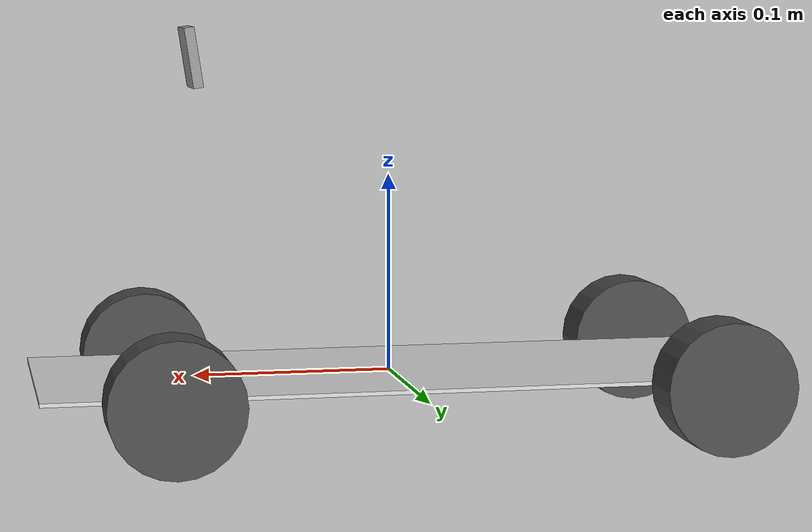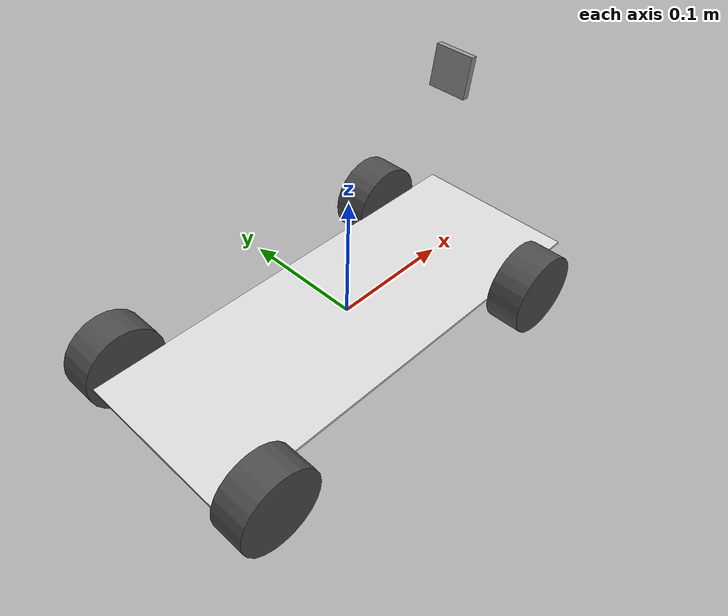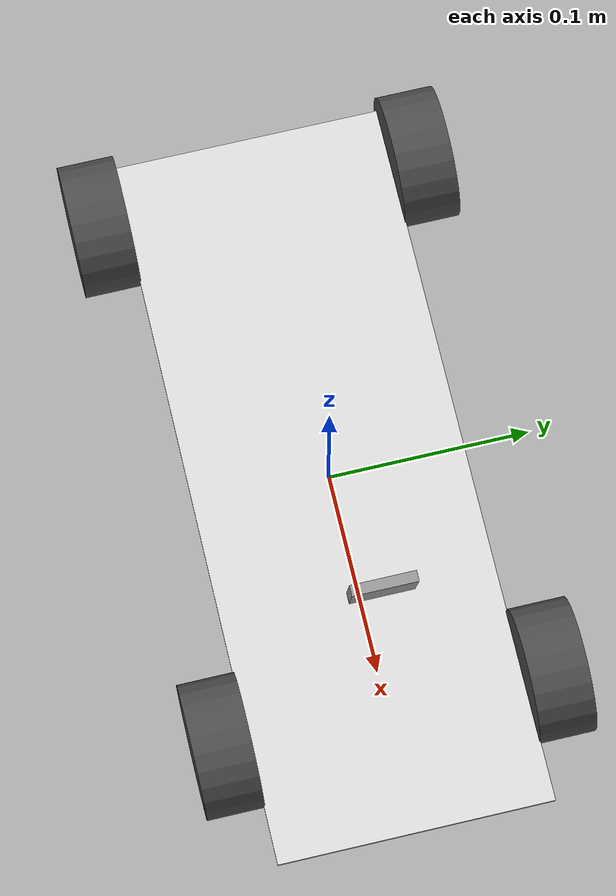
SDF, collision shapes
<?xml version='1.0'?>
<sdf version='1.6'>
  <model name='car1'>
    <include>
      <uri>model://chassis1</uri>
      <pose>0 0 0 0 0 0</pose>
    </include>
    <!-- including a left rear wheel -->
    <include>
      <uri>model://wheel_left1</uri>
      <pose>-0.152 0.081 0 0 0 0</pose>
      <name>wheel_rear_left1</name>
    </include>
    <!-- including a front rear wheel -->
    <include>
      <uri>model://wheel_right1</uri>
      <pose>-0.152 -0.081 0 0 0 0</pose>
      <name>wheel_rear_right1</name>
    </include>
    <!-- including a left steering comp. -->
    <include>
      <uri>model://steering_column1</uri>
      <pose>0.112 0.0725 0 0 0 0</pose>
      <name>steer_left1</name>
    </include>
    <!-- including a right steering comp. -->
    <include>
      <uri>model://steering_column1</uri>
      <pose>0.112 -0.0725 0 0 0 0</pose>
      <name>steer_right1</name>
    </include>
    <!-- including a left front wheel -->
    <include>
      <uri>model://wheel_left1</uri>
      <pose>0.118 0.081 0 0 0 0</pose>
      <name>wheel_front_left1</name>
    </include>
    <!-- including a right front wheel -->
    <include>
      <uri>model://wheel_right1</uri>
      <pose>0.118 -0.081 0 0 0 0</pose>
      <name>wheel_front_right1</name>
    </include>

    <!-- including the camera link -->

    <!-- realsense -->
    <include>
      <uri>model://camera</uri>
      <pose>0.1 0 0.16 0 0.15 -0.0</pose>
      <name>camera1</name>
    </include>

    <!-- includeing the car body -->
    <include>
      <uri>model://car_body1</uri>
      <pose>-0.024 0.0 -0.028 0 0.0 0</pose>
      <name>car_body1</name>
    </include>

    <!-- LIST OF JOINTS -->
    <joint name='joint_leftrear_rim1' type='revolute'>
      <parent>chassis1::link</parent>
      <child>wheel_rear_left1::link_rim</child>
      <pose frame=''>0 0 0 0 -0 0</pose>
      <axis>
        <xyz>0 0 -1</xyz>
        <use_parent_model_frame>0</use_parent_model_frame>
        <limit>
          <lower>-1.79769e+308</lower>
          <upper>1.79769e+308</upper>
          <effort>-1</effort>
          <velocity>-1</velocity>
        </limit>
        <dynamics>
          <spring_reference>0</spring_reference>
          <spring_stiffness>0</spring_stiffness>
          <damping>0</damping>
          <friction>0</friction>
        </dynamics>
      </axis>
      <physics>
        <ode>
          <limit>
            <cfm>0</cfm>
            <erp>0.2</erp>
          </limit>
          <suspension>
            <cfm>0</cfm>
            <erp>0.2</erp>
          </suspension>
        </ode>
      </physics>
    </joint>

    <joint name='joint_rightrear_rim1' type='revolute'>
      <parent>chassis1::link</parent>
      <child>wheel_rear_right1::link_rim</child>
      <pose frame=''>0 0 0 0 -0 0</pose>
      <axis>
        <xyz>0 0 -1</xyz>
        <use_parent_model_frame>0</use_parent_model_frame>
        <limit>
          <lower>-1.79769e+308</lower>
          <upper>1.79769e+308</upper>
          <effort>-1</effort>
          <velocity>-1</velocity>
        </limit>
        <dynamics>
          <spring_reference>0</spring_reference>
          <spring_stiffness>0</spring_stiffness>
          <damping>0</damping>
          <friction>0</friction>
        </dynamics>
      </axis>
      <physics>
        <ode>
          <limit>
            <cfm>0</cfm>
            <erp>0.2</erp>
          </limit>
          <suspension>
            <cfm>0</cfm>
            <erp>0.2</erp>
          </suspension>
        </ode>
      </physics>
    </joint>

    <!-- Front right joint between the chassis1 and the steering comp. -->
    <joint name='joint_leftfront_steer1' type='revolute'>
      <parent>chassis1::link</parent>
      <child>steer_left1::link_steer</child>
      <pose frame=''>0 0 0.005 0 -0 0</pose>
      <axis>
        <xyz>0 1 0</xyz>
        <use_parent_model_frame>0</use_parent_model_frame>
        <limit>
          <lower>-1.79769e+308</lower>
          <upper>1.79769e+308</upper>
          <effort>-1</effort>
          <velocity>-1</velocity>
        </limit>
        <dynamics>
          <spring_reference>0</spring_reference>
          <spring_stiffness>0</spring_stiffness>
          <damping>0</damping>
          <friction>0</friction>
        </dynamics>
      </axis>
      <physics>
        <ode>
          <limit>
            <cfm>0</cfm>
            <erp>0.2</erp>
          </limit>
          <suspension>
            <cfm>0</cfm>
            <erp>0.2</erp>
          </suspension>
        </ode>
      </physics>
    </joint>
    <!-- Front left joint between the chassis1 and the steering comp. -->
    <joint name='joint_rightfront_steer1' type='revolute'>
      <parent>chassis1::link</parent>
      <child>steer_right1::link_steer</child>
      <pose frame=''>0 0 -0.005 0 -0 0</pose>
      <axis>
        <xyz>0 1 0</xyz>
        <use_parent_model_frame>0</use_parent_model_frame>
        <limit>
          <lower>-1.79769e+308</lower>
          <upper>1.79769e+308</upper>
          <effort>-1</effort>
          <velocity>-1</velocity>
        </limit>
        <dynamics>
          <spring_reference>0</spring_reference>
          <spring_stiffness>0</spring_stiffness>
          <damping>0</damping>
          <friction>0</friction>
        </dynamics>
      </axis>
      <physics>
        <ode>
          <limit>
            <cfm>0</cfm>
            <erp>0.2</erp>
          </limit>
          <suspension>
            <cfm>0</cfm>
            <erp>0.2</erp>
          </suspension>
        </ode>
      </physics>
    </joint>

    <!-- Right joint between the steering and the rim   -->
    <joint name='joint_rightfront_rim1' type='revolute'>
      <parent>steer_right1::link_steer</parent>
      <child>wheel_front_right1::link_rim</child>
      <pose frame=''>0 0 0 0 -0 0</pose>
      <axis>
        <xyz>0 0 -1</xyz>
        <use_parent_model_frame>0</use_parent_model_frame>
        <limit>
          <lower>-1.79769e+308</lower>
          <upper>1.79769e+308</upper>
          <effort>-1</effort>
          <velocity>-1</velocity>
        </limit>
        <dynamics>
          <spring_reference>0</spring_reference>
          <spring_stiffness>0</spring_stiffness>
          <damping>0</damping>
          <friction>0</friction>
        </dynamics>
      </axis>
      <physics>
        <ode>
          <limit>
            <cfm>0</cfm>
            <erp>0.2</erp>
          </limit>
          <suspension>
            <cfm>0</cfm>
            <erp>0.2</erp>
          </suspension>
        </ode>
      </physics>
    </joint>

    <!-- Left joint between the steering and the rim   -->
    <joint name='joint_leftfront_rim1' type='revolute'>
      <parent>steer_left1::link_steer</parent>
      <child>wheel_front_left1::link_rim</child>
      <pose frame=''>0 0 0 0 -0 0</pose>
      <axis>
        <xyz>0 0 -1</xyz>
        <use_parent_model_frame>0</use_parent_model_frame>
        <limit>
          <lower>-1.79769e+308</lower>
          <upper>1.79769e+308</upper>
          <effort>-1</effort>
          <velocity>-1</velocity>
        </limit>
        <dynamics>
          <spring_reference>0</spring_reference>
          <spring_stiffness>0</spring_stiffness>
          <damping>0</damping>
          <friction>0</friction>
        </dynamics>
      </axis>
      <physics>
        <ode>
          <limit>
            <cfm>0</cfm>
            <erp>0.2</erp>
          </limit>
          <suspension>
            <cfm>0</cfm>
            <erp>0.2</erp>
          </suspension>
        </ode>
      </physics>
    </joint>

    <!-- fixed joint for the car body -->
    <joint name='joint_body1' type='fixed'>
      <parent>chassis1::link</parent>
      <child>car_body1::link</child>
      <pose frame=''>0 0 0 0 -0 0</pose>
      <physics>
        <ode>
          <limit>
            <cfm>0</cfm>
            <erp>0.2</erp>
          </limit>
          <suspension>
            <cfm>0</cfm>
            <erp>0.2</erp>
          </suspension>
        </ode>
      </physics>
    </joint>

    <!-- fixed joint for the camera -->
    <joint name='joint_camera1' type='fixed'>
      <parent>chassis1::link</parent>
      <child>camera1::link_camera</child>
      <pose frame=''>0 0 0 0 -0 0</pose>
      <physics>
        <ode>
          <limit>
            <cfm>0</cfm>
            <erp>0.2</erp>
          </limit>
          <suspension>
            <cfm>0</cfm>
            <erp>0.2</erp>
          </suspension>
        </ode>
      </physics>
    </joint>

    <!-- Plugin  -->
    <plugin name='CarLikeRobotPlugin' filename='libcar_plugin.so'>
      <robotNamespace>car1</robotNamespace>
      <wheelbase>0.26</wheelbase>
      <axletrack>0.162</axletrack>
      <wheelradius>0.0325</wheelradius>
      <speed_wheel_joints>
        <front_wheel_joints>
          <leftjoint>joint_leftfront_rim1</leftjoint>
          <rightjoint>joint_rightfront_rim1</rightjoint>
        </front_wheel_joints>
        <rear_wheel_joints>
          <leftjoint>joint_leftrear_rim1</leftjoint>
          <rightjoint>joint_rightrear_rim1</rightjoint>
        </rear_wheel_joints>
        <kp>0.01</kp>
        <ki>0.0</ki>
        <kd>0.0</kd>
      </speed_wheel_joints>
      <steer_wheel_joints>
        <leftjoint>joint_leftfront_steer1</leftjoint>
        <rightjoint>joint_rightfront_steer1</rightjoint>
        <kp>10</kp>
        <ki>0.0</ki>
        <kd>0.1</kd>
      </steer_wheel_joints>
      <initial_steer>0.0</initial_steer>
      <initial_speed>0.0</initial_speed>
    </plugin>

    <plugin name='bno055' filename='libbno055_plugin.so'>
      <rosTopicNamespace>car1</rosTopicNamespace>
    </plugin>
    <plugin name='gps' filename='libgps_plugin.so'>
      <rosTopicNamespace>car1</rosTopicNamespace>
    </plugin>

  </model>
</sdf>

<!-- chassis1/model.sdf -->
<sdf version='1.6'>
  <model name='chassis1'>
    <link name='link'>
      <inertial>
        <mass>0.26244</mass>
        <inertia>
          <ixx>0.00283444</ixx>
          <ixy>0</ixy>
          <ixz>0</ixz>
          <iyy>0.00039867</iyy>
          <iyz>0</iyz>
          <izz>0.00323293</izz>
        </inertia>
        <pose frame=''>0 0 0 0 -0 0</pose>
      </inertial>
      <pose frame=''>0 0 0 0 0 1.5708</pose>
      <gravity>1</gravity>
      <kinematic>0</kinematic>
      <enable_wind>0</enable_wind>
      <visual name='visual'>
        <pose frame=''>0 0 -0.0065 0 0 -1.57079</pose>
        <geometry>
          <mesh>
            <uri>model://chassis1/meshes/chassisV5.dae</uri>
            <scale>1 1 1</scale>
          </mesh>
        </geometry>
        <material>
          <lighting>1</lighting>
          <shader type='vertex'>
            <normal_map>__default__</normal_map>
          </shader>
          <ambient>0.6 0.6 0.6 1</ambient>
          <diffuse>0.85 0.85 0.85 1</diffuse>
          <specular>0.6 0.6 0.6 1</specular>
          <emissive>0 0 0 1</emissive>
        </material>
        <transparency>0</transparency>
        <cast_shadows>1</cast_shadows>
      </visual>
      <collision name='collision'>
        <laser_retro>0</laser_retro>
        <max_contacts>10</max_contacts>
        <pose frame=''>0 0 0 0 -0 0</pose>
        <geometry>
          <box>
            <size>0.135 0.36 0.002</size>
          </box>
        </geometry>
        <surface>
          <friction>
            <ode>
              <mu>1</mu>
              <mu2>1</mu2>
              <fdir1>0 0 0</fdir1>
              <slip1>0</slip1>
              <slip2>0</slip2>
            </ode>
            <torsional>
              <coefficient>1</coefficient>
              <patch_radius>0</patch_radius>
              <surface_radius>0</surface_radius>
              <use_patch_radius>1</use_patch_radius>
              <ode>
                <slip>0</slip>
              </ode>
            </torsional>
          </friction>
          <bounce>
            <restitution_coefficient>0</restitution_coefficient>
            <threshold>1e+06</threshold>
          </bounce>
          <contact>
            <collide_without_contact>0</collide_without_contact>
            <collide_without_contact_bitmask>1</collide_without_contact_bitmask>
            <collide_bitmask>1</collide_bitmask>
            <ode>
              <soft_cfm>0</soft_cfm>
              <soft_erp>0.2</soft_erp>
              <kp>1e+13</kp>
              <kd>1</kd>
              <max_vel>0.01</max_vel>
              <min_depth>0</min_depth>
            </ode>
            <bullet>
              <split_impulse>1</split_impulse>
              <split_impulse_penetration_threshold>-0.01</split_impulse_penetration_threshold>
              <soft_cfm>0</soft_cfm>
              <soft_erp>0.2</soft_erp>
              <kp>1e+13</kp>
              <kd>1</kd>
            </bullet>
          </contact>
        </surface>
      </collision>
    </link>
  </model>
</sdf>

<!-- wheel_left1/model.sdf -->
<sdf version='1.6'>
  <model name='wheel_left1'>

    <link name='link_rim'>
      <inertial>
        <mass>0.038</mass>
        <inertia>
          <ixx>0.00001283</ixx>
          <ixy>0</ixy>
          <ixz>0</ixz>
          <iyy>0.00001283</iyy>
          <iyz>0</iyz>
          <izz>0.00002069</izz>
        </inertia>
        <pose frame=''>0 0 0 0 -0 0</pose>
      </inertial>
      <pose frame=''>0.0 0.0 0 1.5708 0 0</pose>
      <gravity>1</gravity>
      <kinematic>0</kinematic>
      <enable_wind>0</enable_wind>
      <visual name='visual'>
       <pose frame=''>0 0 0 -1.5708 0 0</pose>
       <geometry>
          <mesh>
            <uri>model://wheel_left1/meshes/rim.dae</uri>
            <scale>1 1 1</scale>
          </mesh>
        </geometry>
        <material>
          <lighting>1</lighting>
          <shader type='vertex'>
            <normal_map>__default__</normal_map>
          </shader>
          <ambient>0.2 0.2 0.2 1</ambient>
          <diffuse>0.3 0.3 0.3 1</diffuse>
          <specular>0.5 0.5 0.5 1</specular>
          <emissive>0.0 0.0 0.0 0.0</emissive>
        </material>
        <transparency>0</transparency>
        <cast_shadows>1</cast_shadows>
      </visual>
      <collision name='collision'>
        <laser_retro>0</laser_retro>
        <max_contacts>10</max_contacts>
        <pose frame=''>0 0 0 0 -0 0</pose>
        <geometry>
          <cylinder>
            <radius>0.033000</radius>
            <length>0.028000</length>
          </cylinder>
        </geometry>
        <surface>
          <friction>
            <ode>
              <mu>0.7</mu>
              <mu2>0.7</mu2>
              <fdir1>0 0 0</fdir1>
              <slip1>0</slip1>
              <slip2>0</slip2>
            </ode>
            <torsional>
              <coefficient>1</coefficient>
              <patch_radius>0</patch_radius>
              <surface_radius>0</surface_radius>
              <use_patch_radius>1</use_patch_radius>
              <ode>
                <slip>0</slip>
              </ode>
            </torsional>
          </friction>
          <bounce>
            <restitution_coefficient>0</restitution_coefficient>
            <threshold>1e+06</threshold>
          </bounce>
          <contact>
            <collide_without_contact>0</collide_without_contact>
            <collide_without_contact_bitmask>1</collide_without_contact_bitmask>
            <collide_bitmask>1</collide_bitmask>
            <ode>
              <soft_cfm>0</soft_cfm>
              <soft_erp>0.2</soft_erp>
              <kp>1e+07</kp>
              <kd>1</kd>
              <max_vel>0.01</max_vel>
              <min_depth>0</min_depth>
            </ode>
            <bullet>
              <split_impulse>1</split_impulse>
              <split_impulse_penetration_threshold>-0.01</split_impulse_penetration_threshold>
              <soft_cfm>0</soft_cfm>
              <soft_erp>0.2</soft_erp>
              <kp>1e+07</kp>
              <kd>1</kd>
            </bullet>
          </contact>
        </surface>
      </collision>
    </link>

  </model>
</sdf>

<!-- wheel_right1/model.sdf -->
<sdf version='1.6'>
  <model name='wheel_right1'>

    <link name='link_rim'>
      <inertial>
        <mass>0.038</mass>
        <inertia>
          <ixx>0.00001283</ixx>
          <ixy>0</ixy>
          <ixz>0</ixz>
          <iyy>0.00001283</iyy>
          <iyz>0</iyz>
          <izz>0.00002069</izz>
        </inertia>
        <pose frame=''>0 0 0 0 -0 0</pose>
      </inertial>
      <pose frame=''>0.0 0.0 0 1.5708 0 0</pose>
      <gravity>1</gravity>
      <kinematic>0</kinematic>
      <enable_wind>0</enable_wind>
      <visual name='visual'>
       <pose frame=''>0 0 0 -1.5708 0 0</pose>
       <geometry>
          <mesh>
            <uri>model://wheel_right1/meshes/rim.dae</uri>
            <scale>1 1 1</scale>
          </mesh>
        </geometry>
        <material>
          <lighting>1</lighting>
          <shader type='vertex'>
            <normal_map>__default__</normal_map>
          </shader>
          <ambient>0.2 0.2 0.2 1</ambient>
          <diffuse>0.3 0.3 0.3 1</diffuse>
          <specular>0.5 0.5 0.5 1</specular>
          <emissive>0.0 0.0 0.0 0.0</emissive>
        </material>
        <transparency>0</transparency>
        <cast_shadows>1</cast_shadows>
      </visual>
      <collision name='collision'>
        <laser_retro>0</laser_retro>
        <max_contacts>10</max_contacts>
        <pose frame=''>0 0 0 0 -0 0</pose>
        <geometry>
          <cylinder>
            <radius>0.033000</radius>
            <length>0.028000</length>
          </cylinder>
        </geometry>
        <surface>
          <friction>
            <ode>
              <mu>0.7</mu>
              <mu2>0.7</mu2>
              <fdir1>0 0 0</fdir1>
              <slip1>0</slip1>
              <slip2>0</slip2>
            </ode>
            <torsional>
              <coefficient>1</coefficient>
              <patch_radius>0</patch_radius>
              <surface_radius>0</surface_radius>
              <use_patch_radius>1</use_patch_radius>
              <ode>
                <slip>0</slip>
              </ode>
            </torsional>
          </friction>
          <bounce>
            <restitution_coefficient>0</restitution_coefficient>
            <threshold>1e+06</threshold>
          </bounce>
          <contact>
            <collide_without_contact>0</collide_without_contact>
            <collide_without_contact_bitmask>1</collide_without_contact_bitmask>
            <collide_bitmask>1</collide_bitmask>
            <ode>
              <soft_cfm>0</soft_cfm>
              <soft_erp>0.2</soft_erp>
              <kp>1e+07</kp>
              <kd>1</kd>
              <max_vel>0.01</max_vel>
              <min_depth>0</min_depth>
            </ode>
            <bullet>
              <split_impulse>1</split_impulse>
              <split_impulse_penetration_threshold>-0.01</split_impulse_penetration_threshold>
              <soft_cfm>0</soft_cfm>
              <soft_erp>0.2</soft_erp>
              <kp>1e+07</kp>
              <kd>1</kd>
            </bullet>
          </contact>
        </surface>
      </collision>
    </link>

  </model>
</sdf>

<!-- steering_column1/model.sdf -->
<sdf version='1.6'>
  <model name='steering_column1'>
    <link name='link_steer'>
      <inertial>
        <mass>0.001</mass>
        <inertia>
          <ixx>0.00014583</ixx>
          <ixy>0</ixy>
          <ixz>0</ixz>
          <iyy>0.00014583</iyy>
          <iyz>0</iyz>
          <izz>0.000125</izz>
        </inertia>
        <pose frame=''>0 0 0 0 -0 0</pose>
      </inertial>
      <pose frame=''>0 0 0 1.5708 0 0</pose>
      <gravity>1</gravity>
      <self_collide>0</self_collide>
      <kinematic>0</kinematic>
      <enable_wind>0</enable_wind>
      <visual name='visual'>
        <pose frame=''>0 0 0 0 -0 0</pose>
        <geometry>
          <cylinder>
            <radius>0.001</radius>
            <length>0.01</length>
          </cylinder>
        </geometry>
        <material>
          <lighting>1</lighting>
          <script>
            <uri>file://media/materials/scripts/gazebo.material</uri>
            <name>Gazebo/Grey</name>
          </script>
          <shader type='vertex'>
            <normal_map>__default__</normal_map>
          </shader>
          <ambient>0.3 0.3 0.3 1</ambient>
          <diffuse>0.7 0.7 0.7 1</diffuse>
          <specular>0.01 0.01 0.01 1</specular>
          <emissive>0 0 0 1</emissive>
        </material>
        <transparency>0</transparency>
        <cast_shadows>1</cast_shadows>
      </visual>
      <collision name='collision'>
        <laser_retro>0</laser_retro>
        <max_contacts>10</max_contacts>
        <pose frame=''>0 0 0 0 -0 0</pose>
        <geometry>
          <cylinder>
            <radius>0.001</radius>
            <length>0.01</length>
          </cylinder>
        </geometry>
        <surface>
          <friction>
            <ode>
              <mu>1</mu>
              <mu2>1</mu2>
              <fdir1>0 0 0</fdir1>
              <slip1>0</slip1>
              <slip2>0</slip2>
            </ode>
            <torsional>
              <coefficient>1</coefficient>
              <patch_radius>0</patch_radius>
              <surface_radius>0</surface_radius>
              <use_patch_radius>1</use_patch_radius>
              <ode>
                <slip>0</slip>
              </ode>
            </torsional>
          </friction>
          <bounce>
            <restitution_coefficient>0</restitution_coefficient>
            <threshold>1e+06</threshold>
          </bounce>
          <contact>
            <collide_without_contact>0</collide_without_contact>
            <collide_without_contact_bitmask>1</collide_without_contact_bitmask>
            <collide_bitmask>1</collide_bitmask>
            <ode>
              <soft_cfm>0</soft_cfm>
              <soft_erp>0.2</soft_erp>
              <kp>1e+13</kp>
              <kd>1</kd>
              <max_vel>0.01</max_vel>
              <min_depth>0</min_depth>
            </ode>
            <bullet>
              <split_impulse>1</split_impulse>
              <split_impulse_penetration_threshold>-0.01</split_impulse_penetration_threshold>
              <soft_cfm>0</soft_cfm>
              <soft_erp>0.2</soft_erp>
              <kp>1e+13</kp>
              <kd>1</kd>
            </bullet>
          </contact>
        </surface>
      </collision>
    </link>

  </model>
</sdf>

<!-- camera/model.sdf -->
<sdf version='1.6'>
  <model name='camera'>
    <link name='link_camera'>
      <inertial>
        <mass>0.0052875</mass>
        <inertia>
          <ixx>4.1e-07</ixx>
          <ixy>0</ixy>
          <ixz>0</ixz>
          <iyy>7.9e-07</iyy>
          <iyz>0</iyz>
          <izz>4.1e-07</izz>
        </inertia>
        <pose frame=''>0 0 0 0 -0 0</pose>
      </inertial>
      <pose frame=''>0 0 0 0 -0 0</pose>
      <gravity>1</gravity>
      <self_collide>0</self_collide>
      <kinematic>0</kinematic>
      <enable_wind>0</enable_wind>
      <visual name='visual'>
        <pose frame=''>0 0 0 0 -0 0</pose>
        <geometry>
          <box>
            <size>0.005 0.03 0.03</size>
          </box>
        </geometry>
        <material>
          <lighting>1</lighting>
          <script>
            <uri>file://media/materials/scripts/gazebo.material</uri>
            <name>Gazebo/Grey</name>
          </script>
          <shader type='vertex'>
            <normal_map>__default__</normal_map>
          </shader>
          <ambient>0.3 0.3 0.3 1</ambient>
          <diffuse>0.7 0.7 0.7 1</diffuse>
          <specular>0.01 0.01 0.01 1</specular>
          <emissive>0 0 0 1</emissive>
        </material>
        <transparency>0</transparency>
        <cast_shadows>1</cast_shadows>
      </visual>
      <collision name='collision'>
        <laser_retro>0</laser_retro>
        <max_contacts>10</max_contacts>
        <pose frame=''>0 0 0 0 -0 0</pose>
        <geometry>
          <box>
            <size>0.005 0.03 0.03</size>
          </box>
        </geometry>
        <surface>
          <friction>
            <ode>
              <mu>1</mu>
              <mu2>1</mu2>
              <fdir1>0 0 0</fdir1>
              <slip1>0</slip1>
              <slip2>0</slip2>
            </ode>
            <torsional>
              <coefficient>1</coefficient>
              <patch_radius>0</patch_radius>
              <surface_radius>0</surface_radius>
              <use_patch_radius>1</use_patch_radius>
              <ode>
                <slip>0</slip>
              </ode>
            </torsional>
          </friction>
          <bounce>
            <restitution_coefficient>0</restitution_coefficient>
            <threshold>1e+06</threshold>
          </bounce>
          <contact>
            <collide_without_contact>0</collide_without_contact>
            <collide_without_contact_bitmask>1</collide_without_contact_bitmask>
            <collide_bitmask>1</collide_bitmask>
            <ode>
              <soft_cfm>0</soft_cfm>
              <soft_erp>0.2</soft_erp>
              <kp>1e+13</kp>
              <kd>1</kd>
              <max_vel>0.01</max_vel>
              <min_depth>0</min_depth>
            </ode>
            <bullet>
              <split_impulse>1</split_impulse>
              <split_impulse_penetration_threshold>-0.01</split_impulse_penetration_threshold>
              <soft_cfm>0</soft_cfm>
              <soft_erp>0.2</soft_erp>
              <kp>1e+13</kp>
              <kd>1</kd>
            </bullet>
          </contact>
        </surface>
      </collision>

    <sensor name="imu_sensor" type="imu">
        <always_on>true</always_on>
        <update_rate>200</update_rate>
        <visualize>true</visualize>
        <topic>__default_topic__</topic>
        <plugin filename="libgazebo_ros_imu_sensor.so" name="imu_plugin">
          <robotNamespace/>
          <topicName>/realsense/imu</topicName>
          <bodyName>imu_link</bodyName>
          <updateRateHZ>200.0</updateRateHZ>
          <gaussianNoise>0.02</gaussianNoise>
          <xyzOffset>0 0 0</xyzOffset>
          <rpyOffset>0 0 0</rpyOffset>
          <frameName>realsense</frameName>
          <initialOrientationAsReference>false</initialOrientationAsReference>
        </plugin>
      </sensor>
      <sensor name="color" type="camera">
        <pose frame="">0 -0.046 0.004 0 0 0</pose>
        <camera name="__default__">
          <horizontal_fov>1.047</horizontal_fov>
          <image>
            <width>640</width>
            <height>480</height>
            <format>RGB_INT8</format>
          </image>
          <clip>
            <near>0.1</near>
            <far>100</far>
          </clip>
          <noise>
            <type>gaussian</type>
            <mean>0.0</mean>
            <stddev>0.007</stddev>
          </noise>
        </camera>
        <always_on>1</always_on>
        <update_rate>60</update_rate>
        <visualize>1</visualize>
      </sensor>
      <sensor name="ired1" type="camera">
        <pose frame="">0 -0.06 0.004 0 0 0</pose>
        <camera name="__default__">
          <horizontal_fov>1.047</horizontal_fov>
          <image>
            <width>640</width>
            <height>480</height>
            <format>L_INT8</format>
          </image>
          <clip>
            <near>0.1</near>
            <far>100</far>
          </clip>
          <noise>
            <type>gaussian</type>
            <mean>0.0</mean>
            <stddev>0.007</stddev>
          </noise>
        </camera>
        <always_on>1</always_on>
        <update_rate>60</update_rate>
        <visualize>0</visualize>
      </sensor>
      <sensor name="ired2" type="camera">
        <pose frame="">0 0.01 0.004 0 0 0</pose>
        <camera name="__default__">
          <horizontal_fov>1.047</horizontal_fov>
          <image>
            <width>640</width>
            <height>480</height>
            <format>L_INT8</format>
          </image>
          <clip>
            <near>0.1</near>
            <far>100</far>
          </clip>
          <noise>
            <type>gaussian</type>
            <mean>0.0</mean>
            <stddev>0.007</stddev>
          </noise>
        </camera>
        <always_on>1</always_on>
        <update_rate>60</update_rate>
        <visualize>0</visualize>
      </sensor>
      <sensor name="depth" type="depth">
        <pose frame="">0 -0.03 0.004 0 0 0</pose>
        <camera name="__default__">
          <horizontal_fov>1.047</horizontal_fov>
          <image>
            <width>640</width>
            <height>480</height>
          </image>
          <clip>
            <near>0.1</near>
            <far>100</far>
          </clip>
          <noise>
            <type>gaussian</type>
            <mean>0.0</mean>
            <stddev>0.007</stddev>
          </noise>
        </camera>
        <always_on>1</always_on>
        <update_rate>60</update_rate>
        <visualize>0</visualize>
      </sensor>
    </link>
    <plugin name="camera" filename="librealsense_gazebo_plugin.so">
        <depthUpdateRate>30.0</depthUpdateRate>
        <colorUpdateRate>30.0</colorUpdateRate>
        <infraredUpdateRate>30.0</infraredUpdateRate>
        <depthTopicName>depth/image_raw</depthTopicName>
        <depthCameraInfoTopicName>depth/camera_info</depthCameraInfoTopicName>
        <colorTopicName>color/image_raw</colorTopicName>
        <colorCameraInfoTopicName>color/camera_info</colorCameraInfoTopicName>
        <infrared1TopicName>infra1/image_raw</infrared1TopicName>
        <infrared1CameraInfoTopicName>infra1/camera_info</infrared1CameraInfoTopicName>
        <infrared2TopicName>infra2/image_raw</infrared2TopicName>
        <infrared2CameraInfoTopicName>infra2/camera_info</infrared2CameraInfoTopicName>
        <colorOpticalframeName>camera_color_optical_frame</colorOpticalframeName>
        <depthOpticalframeName>camera_depth_optical_frame</depthOpticalframeName>
        <infrared1OpticalframeName>camera_infrared1_optical_frame</infrared1OpticalframeName>
        <infrared2OpticalframeName>camera_infrared2_optical_frame</infrared2OpticalframeName>
        <rangeMinDepth>0.2</rangeMinDepth>
        <rangeMaxDepth>10.0</rangeMaxDepth>
        <pointCloud>true</pointCloud>
        <pointCloudTopicName>depth/color/points</pointCloudTopicName>
        <pointCloudCutoff>0.25</pointCloudCutoff>
        <pointCloudCutoffMax>9.0</pointCloudCutoffMax>
      </plugin>

  </model>
</sdf>

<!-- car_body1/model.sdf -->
<sdf version='1.6'>
  <model name='body1'>
    <link name='link'>
      <inertial>
        <mass>1</mass>
        <inertia>
          <ixx>0.166667</ixx>
          <ixy>0</ixy>
          <ixz>0</ixz>
          <iyy>0.166667</iyy>
          <iyz>0</iyz>
          <izz>0.166667</izz>
        </inertia>
      </inertial>
      <pose frame=''>0 -0 0 0 -0 0</pose>
      <visual name='visual'>
        <pose frame=''>0 0 0 0 -0 0</pose>
        <geometry>
          <mesh>
            <uri>model://car_body1/meshes/CarBody.dae</uri>
            <scale>1 1 1</scale>
          </mesh>
        </geometry>
        <material>
            <script>
              <uri>model://car_body1/materials/scripts</uri>
              <uri>model://car_body1/materials/textures</uri>
              <name>CarBody/Image</name>
            </script>
        </material>
        <transparency>0</transparency>
        <cast_shadows>1</cast_shadows>
      </visual>
    </link>
    <static>0</static>
    <allow_auto_disable>1</allow_auto_disable>
  </model>
</sdf>
